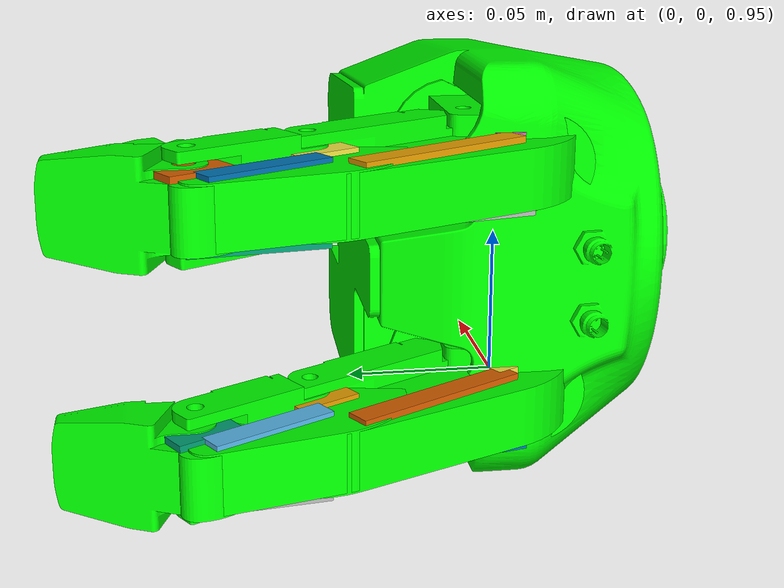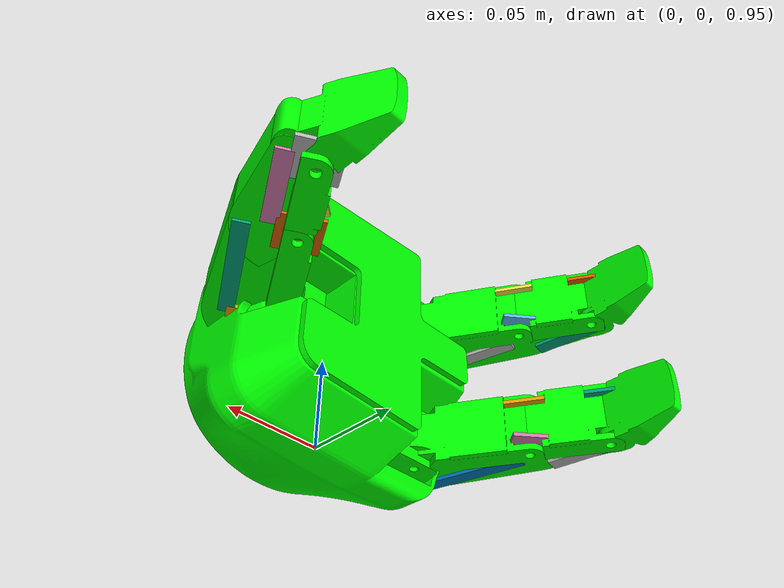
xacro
<?xml version="1.0"?>
<robot xmlns:xacro="http://ros.org/wiki/xacro"
       name="robotiq_hand" >

  <xacro:arg name="namespace_without_slash" default="left_hand"/>
  <xacro:arg name="prefix_without_underscore" default="left_hand"/>
  <xacro:arg name="prefix" default="$(arg prefix_without_underscore)_"/>

  <!-- https://answers.ros.org/question/216975/loading-variables-with-xacroinclude/ -->
  <xacro:include filename="$(find robotiq_s_model_visualization)/cfg/robotiq_hand.plugin.gazebo.xacro" />
  <xacro:robotiq_hand_plugin_gazebo namespace_without_slash="$(arg namespace_without_slash)" />

  <xacro:include filename="$(find robotiq_s_model_visualization)/cfg/robotiq_hand_macro.urdf.xacro" />

  <link name="world"/>

  <xacro:robotiq_hand prefix="$(arg prefix)" parent="world" reflect="-1">
    <origin rpy="0 0 0" xyz="0 0 1.0"/>
  </xacro:robotiq_hand>

</robot>

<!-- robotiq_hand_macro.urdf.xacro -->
<robot xmlns:xacro="http://ros.org/wiki/xacro" name="robotiq_hand">

  <xacro:macro name="robotiq_finger" params="prefix">
    <!-- Link list -->

    <!-- Link 0 -->
    <link name="${prefix}link_0">
      <visual>
        <origin xyz="0 0 0" rpy="0 0 0"/>
        <geometry>
          <mesh filename="package://robotiq_s_model_visualization/meshes/s-model_articulated/visual/link_0.STL" />
        </geometry>
        <material name="green">
          <color rgba="0 1 0 1"/>
        </material>
      </visual>
      <collision>
        <origin rpy="0 0 0" xyz="0 0 0"/>
        <geometry>
          <mesh filename="package://robotiq_s_model_visualization/meshes/s-model_articulated/collision/link_0.STL" />
        </geometry>
        <material name="yellow">
          <color rgba="0 1 1 1"/>
        </material>
      </collision>
      <inertial>
        <mass value="0.1"/>
        <origin xyz="-0.01 0 0"/>
        <inertia ixx="0.000018" ixy="0" ixz="0" iyy="0.000025" iyz="0" izz="0.000025"/>
      </inertial>
    </link>

    <gazebo reference="${prefix}link_0">
      <mu1>1.1</mu1>
      <mu2>1.1</mu2>
    </gazebo>

    <!-- Link 1 -->
    <link name="${prefix}link_1">
      <visual>
        <origin rpy="0 0 ${3.1416/2}" xyz="0 0.05717 0"/>
        <geometry>
          <mesh filename="package://robotiq_s_model_visualization/meshes/s-model_articulated/visual/link_1.STL" />
        </geometry>
        <material name="green"/>
      </visual>
      <collision>
        <origin rpy="0 0 ${3.1416/2}" xyz="0 0.05717 0"/>
        <geometry>
          <mesh filename="package://robotiq_s_model_visualization/meshes/s-model_articulated/collision/link_1.STL"/>
        </geometry>
        <material name="yellow">
          <color rgba="0 1 1 1"/>
        </material>
      </collision>
      <inertial>
        <origin rpy="0 0 ${3.1416/2}" xyz="0.00053 0.03218 0"/>
        <mass value="0.047"/>
        <inertia ixx= "0.00000499332"
                 ixy= "0.00000091312"
                 ixz="-0.00000000120"
                 iyy= "0.00006434531"
                 iyz="-0.00000000007"
                 izz= "0.00006061917"/>
      </inertial>
    </link>

    <gazebo reference="${prefix}link_1">
      <mu1>1.1</mu1>
      <mu2>1.1</mu2>
    </gazebo>

    <!-- Link 2 -->
    <link name="${prefix}link_2">
      <visual>
        <origin rpy="0 0 ${3.1416/2}" xyz="0 0.03810 0.0075"/>
        <geometry>
          <mesh filename="package://robotiq_s_model_visualization/meshes/s-model_articulated/visual/link_2.STL" />
        </geometry>
        <material name="green"/>
      </visual>
      <collision>
        <origin rpy="0 0 ${3.1416/2}" xyz="0 0.03810 0.0075"/>
          <geometry>
            <mesh filename="package://robotiq_s_model_visualization/meshes/s-model_articulated/collision/link_2.STL"/>
          </geometry>
        <material name="yellow"/>
      </collision>
      <inertial>
        <origin rpy="0 0 ${3.1416/2}" xyz="0.00048 0.02167 0.00018"/>
        <mass value="0.03284"/>
        <inertia ixx="0.00000348008"
                 ixy="0.00000031940"
                 ixz="0.00000013041"
                 iyy="0.00002248123"
                 iyz="0.00000000291"
                 izz="0.00001986346"/>
      </inertial>
    </link>

    <gazebo reference="${prefix}link_2">
      <mu1>1.1</mu1>
      <mu2>1.1</mu2>
    </gazebo>

    <!-- Link 3 -->
    <link name="${prefix}link_3">
      <visual>
        <origin xyz="0 0 0" rpy="0 0 0"/>
        <geometry>
          <mesh filename="package://robotiq_s_model_visualization/meshes/s-model_articulated/visual/link_3.STL" />
        </geometry>
        <material name="green"/>
      </visual>
      <collision>
        <origin xyz="0 0 0" rpy="0 0 0"/>
        <geometry>
          <mesh filename="package://robotiq_s_model_visualization/meshes/s-model_articulated/collision/link_3.STL"/>
        </geometry>
        <material name="yellow"/>
      </collision>
      <inertial>
        <origin rpy="0 0 0" xyz="0.01626 0.00049 0.0002"/>
        <mass value="0.03354"/>
        <inertia ixx="0.00000305151"
                 ixy="0.00000089792"
                 ixz="0.00000000249"
                 iyy="0.00001427978"
                 iyz="-0.00000001191"
                 izz="0.00001264126"/>
      </inertial>
    </link>

    <gazebo reference="${prefix}link_3">
      <mu1>1.1</mu1>
      <mu2>1.1</mu2>
    </gazebo>

    <!-- Link proximal actuating hinge -->
    <link name="${prefix}link_proximal_actuating_hinge">
      <visual>
        <origin rpy="0 0 0" xyz="0.01429 0 0"/>
        <geometry>
          <box size="0.02858 .0075 .002"/>
        </geometry>
      </visual>
      <collision>
        <origin rpy="0 0 0" xyz="0.01429 0 0"/>
         <geometry>
          <box size="0.02858 .0075 .002"/>
        </geometry>
      </collision>
      <inertial>
        <origin rpy="0 0 0" xyz="0.0012 -0.00162 -0.00161"/>
        <mass value="0.02647"/>
        <inertia ixx= "0.00000156447"
                 ixy= "0.000000236226"
                 ixz="-0.00000014862"
                 iyy= "0.00000221068"
                 iyz="-0.00000014369"
                 izz= "0.00000323175"/>
      </inertial>
    </link>

    <gazebo reference="${prefix}link_proximal_actuating_hinge">
      <mu1>1.1</mu1>
      <mu2>1.1</mu2>
    </gazebo>

    <!-- Link paraproximal actuating hinge -->
    <link name="${prefix}link_paraproximal_actuating_hinge">
      <visual>
        <origin rpy="0 0 0" xyz="0.01143 0 0"/>
        <geometry>
          <box size="0.02286 .0075 .002"/>
        </geometry>
      </visual>
      <collision>
        <origin rpy="0 0 0" xyz="0.01143 0 0"/>
         <geometry>
          <box size="0.02286 .0075 .002"/>
        </geometry>
      </collision>
      <inertial>
        <origin rpy="0 0 0" xyz="0.0064 0 0"/>
        <!-- copied from proximal_actuating_hinge -->
        <mass value="0.00362"/>
        <inertia ixx= "0.00000012043"
                 ixy= "0"
                 ixz= "0"
                 iyy= "0.00000053588"
                 iyz= "0"
                 izz= "0.00000065322"/>
      </inertial>
    </link>

    <gazebo reference="${prefix}link_paraproximal_actuating_hinge">
      <mu1>1.1</mu1>
      <mu2>1.1</mu2>
    </gazebo>

    <!-- Link proximal actuating bar -->
    <link name="${prefix}link_proximal_actuating_bar">
      <visual>
        <origin rpy="0 0 0" xyz="0.026789 0 0"/>
        <geometry>
          <box size="0.05398 .0075 .002"/>
        </geometry>
      </visual>
      <collision>
        <origin rpy="0 0 0" xyz="0.026789 0 0"/>
         <geometry>
          <box size="0.05398 .0075 .002"/>
        </geometry>
      </collision>
      <inertial>
        <origin rpy="0 0 0" xyz="0.02699 -0.00122 0"/>
        <mass value="0.00659"/>
        <inertia ixx= "0.00000008348"
                 ixy="-0.0000002179"
                 ixz= "0.00000000134"
                 iyy= "0.00000719076"
                 iyz= "0"
                 izz= "0.00000718272"/>
      </inertial>
    </link>

    <gazebo reference="${prefix}link_proximal_actuating_bar">
      <mu1>1.1</mu1>
      <mu2>1.1</mu2>
    </gazebo>

    <!-- Link paraproximal bar -->
    <link name="${prefix}link_paraproximal_bar">
      <visual>
        <origin rpy="0 0 0" xyz="0.02885 0 0"/>
        <geometry>
          <box size="0.05770 .0075 .002"/>
        </geometry>
      </visual>
      <collision>
        <origin rpy="0 0 0" xyz="0.02885 0 0"/>
         <geometry>
          <box size="0.05770 .0075 .002"/>
        </geometry>
      </collision>
      <inertial>
        <origin rpy="0 0 0" xyz="0.02858 -0.00129 0"/>
        <mass value="0.00732"/>
        <inertia ixx= "0.00000009065"
                 ixy="-0.00000027047"
                 ixz= "0.00000000142"
                 iyy= "0.00000878034"
                 iyz= "0"
                 izz= "0.00000877558"/>
      </inertial>
    </link>

    <gazebo reference="${prefix}link_paraproximal_bar">
      <mu1>1.1</mu1>
      <mu2>1.1</mu2>
    </gazebo>

    <!-- Link median actuating hinge -->
    <link name="${prefix}link_median_actuating_hinge">
      <visual>
        <origin rpy="0 0 0" xyz="0 0 0"/>
        <geometry>
          <box size=".02 .02 .002"/>
        </geometry>
      </visual>
      <collision>
        <origin rpy="0 0 0" xyz="0 0 0"/>
         <geometry>
          <box size=".02 .02 .002"/>
        </geometry>
      </collision>
      <inertial>
        <origin rpy="0 0 0" xyz="0.0092 0.00514 0"/>
        <mass value="0.00359"/>
        <inertia ixx= "0.00000024735"
                 ixy= "0.00000023619"
                 ixz= "0"
                 iyy= "0.00000047681"
                 iyz= "0"
                 izz= "0.00000071813"/>
      </inertial>
    </link>

    <gazebo reference="${prefix}link_median_actuating_hinge">
      <mu1>1.1</mu1>
      <mu2>1.1</mu2>
    </gazebo>

    <!-- Link median bar -->
    <link name="${prefix}link_median_bar">
      <visual>
        <origin rpy="0 0 0" xyz="0.01905 0 0"/>
        <geometry>
          <box size="0.0381 .0075 .002"/>
        </geometry>
      </visual>
      <collision>
        <origin rpy="0 0 0" xyz="0.01905 0 0"/>
         <geometry>
          <box size="0.0381 .0075 .002"/>
        </geometry>
      </collision>
      <inertial>
        <origin rpy="0 0 0" xyz="0.01905 -0.00107 0"/>
        <mass value="0.00538"/>
        <inertia ixx= "0.00000006639"
                 ixy="-0.00000010996"
                 ixz= "0.00000000094"
                 iyy= "0.00000305318"
                 iyz= "0"
                 izz= "0.00000304657"/>
      </inertial>
    </link>

    <gazebo reference="${prefix}link_median_bar">
      <mu1>1.1</mu1>
      <mu2>1.1</mu2>
    </gazebo>

    <!-- Link paramedian hinge -->
    <link name="${prefix}link_paramedian_hinge">
      <visual>
        <origin rpy="0 0 0" xyz="0 0 0"/>
        <geometry>
          <box size=".02 .02 .002"/>
        </geometry>
      </visual>
      <collision>
        <origin rpy="0 0 0" xyz="0 0 0"/>
         <geometry>
          <box size=".02 .02 .002"/>
        </geometry>
      </collision>
      <inertial>
        <origin rpy="0 0 0" xyz="-0.01025 0.00046 0"/>
        <mass value="0.00276"/>
        <inertia ixx= "0.00000004213"
                 ixy="-0.00000001491"
                 ixz= "0"
                 iyy= "0.00000050258"
                 iyz= "0"
                 izz= "0.00000054007"/>
      </inertial>
    </link>

    <gazebo reference="${prefix}link_paramedian_hinge">
      <mu1>1.1</mu1>
      <mu2>1.1</mu2>
    </gazebo>

    <!-- Link median bar underactuated -->
    <link name="${prefix}link_median_bar_underactuated">
      <visual>
        <origin rpy="0 0 0" xyz="0.01905 0 0"/>
        <geometry>
          <box size="0.0381 .0075 .002"/>
        </geometry>
      </visual>
      <collision>
        <origin rpy="0 0 0" xyz="0.01905 0 0"/>
         <geometry>
          <box size="0.0381 .0075 .002"/>
        </geometry>
      </collision>
      <inertial>
        <origin rpy="0 0 0" xyz="0.01905 -0.00107 0"/>
        <mass value="0.00538"/>
        <inertia ixx= "0.00000006639"
                 ixy="-0.00000010996"
                 ixz="-0.00000000094"
                 iyy= "0.00000305318"
                 iyz= "0"
                 izz= "0.00000304657"/>
      </inertial>
    </link>

    <gazebo reference="${prefix}link_median_bar_underactuated">
      <mu1>1.1</mu1>
      <mu2>1.1</mu2>
    </gazebo>

    <!-- Link paradistal hinge -->
    <link name="${prefix}link_paradistal_hinge">
      <visual>
        <origin rpy="0 0 0" xyz="0 0 0"/>
        <geometry>
          <box size=".02 .02 .002"/>
        </geometry>
      </visual>
      <collision>
        <origin rpy="0 0 0" xyz="0 0 0"/>
         <geometry>
          <box size=".02 0.02 .002"/>
        </geometry>
      </collision>
      <inertial>
        <origin rpy="0 0 0" xyz="0.00548 0 0"/>
        <mass value="0.00158"/>
        <inertia ixx= "0.00000001907"
                 ixy= "0"
                 ixz= "0"
                 iyy= "0.00000010970"
                 iyz= "0"
                 izz= "0.00000012610"/>
      </inertial>
    </link>

    <gazebo reference="${prefix}link_paradistal_hinge">
      <mu1>1.1</mu1>
      <mu2>1.1</mu2>
    </gazebo>
    <!-- End of link list -->

    <!-- Joint list -->

    <!-- Joint proximal actuating hinge -->
    <joint name="${prefix}joint_proximal_actuating_hinge" type="revolute">
      <parent link="${prefix}link_0"/>
      <child link="${prefix}link_proximal_actuating_hinge"/>
      <axis xyz="0 0 1"/>
      <origin rpy="0 0 -2.0906" xyz="0 0 0.01"/>
      <limit effort="100" lower="-3.1416" upper="3.1416" velocity="100"/>
    </joint>

    <gazebo reference="${prefix}joint_proximal_actuating_hinge">
      <implicitSpringDamper>1</implicitSpringDamper>
    </gazebo>

    <!-- Joint paraproximal actuating hinge -->
    <joint name="${prefix}joint_paraproximal_actuating_hinge" type="revolute">
      <parent link="${prefix}link_0"/>
      <child link="${prefix}link_paraproximal_actuating_hinge"/>
      <axis xyz="0 0 1"/>
      <origin rpy="0 0 -2.0906" xyz="0 0 -0.01"/>
      <limit effort="100" lower="-3.1416" upper="3.1416" velocity="100"/>
    </joint>

    <gazebo reference="${prefix}joint_paraproximal_actuating_hinge">
      <implicitSpringDamper>1</implicitSpringDamper>
    </gazebo>

    <!-- Joint proximal actuating bar -->
    <joint name="${prefix}joint_proximal_actuating_bar" type="revolute">
      <parent link="${prefix}link_proximal_actuating_hinge"/>
      <child link="${prefix}link_proximal_actuating_bar"/>
      <axis xyz="0 0 1"/>
      <origin rpy="0 0 1.8616" xyz="0.02858 0 0"/>
      <limit effort="100" lower="-3.1416" upper="3.1416" velocity="100"/>
    </joint>

    <gazebo reference="${prefix}joint_proximal_actuating_bar">
      <implicitSpringDamper>1</implicitSpringDamper>
    </gazebo>

    <!-- Joint paraproximal bar -->
    <joint name="${prefix}joint_paraproximal_bar" type="revolute">
      <parent link="${prefix}link_paraproximal_actuating_hinge"/>
      <child link="${prefix}link_paraproximal_bar"/>
      <axis xyz="0 0 1"/>
      <origin rpy="0 0 1.57" xyz="0.02286 0 0"/>
      <limit effort="100" lower="-3.1416" upper="3.1416" velocity="100"/>
    </joint>

    <gazebo reference="${prefix}joint_paraproximal_bar">
      <implicitSpringDamper>1</implicitSpringDamper>
    </gazebo>

    <!-- Joint median actuating hinge -->
    <joint name="${prefix}joint_median_actuating_hinge" type="revolute">
      <parent link="${prefix}link_1"/>
      <child link="${prefix}link_median_actuating_hinge"/>
      <axis xyz="0 0 1"/>
      <origin rpy="0 0 ${-0.37}" xyz="0 0.05715 0.01"/>
      <limit effort="100" lower="-3.1416" upper="3.1416" velocity="100"/>
    </joint>

    <gazebo reference="${prefix}joint_median_actuating_hinge">
      <implicitSpringDamper>1</implicitSpringDamper>
    </gazebo>

    <!-- Joint paramedian hinge -->
    <joint name="${prefix}joint_paramedian_hinge" type="revolute">
      <parent link="${prefix}link_1"/>
      <child link="${prefix}link_paramedian_hinge"/>
      <axis xyz="0 0 1"/>
      <!-- -0.37 is hand picked, 0.9719 is hand calculated from atan(0.02381/0.01625) -->
      <origin rpy="0 0 0" xyz="0 0.05715 -0.01"/>
      <limit effort="100" lower="-3.1416" upper="3.1416" velocity="100"/>
    </joint>

    <gazebo reference="${prefix}joint_paramedian_hinge">
      <implicitSpringDamper>1</implicitSpringDamper>
    </gazebo>

    <!-- Joint median actuating hinge median bar -->
    <joint name="${prefix}joint_median_actuating_hinge_median_bar" type="revolute">
      <parent link="${prefix}link_median_actuating_hinge"/>
      <child link="${prefix}link_median_bar"/>
      <axis xyz="0 0 1"/>
      <!-- hand calc 90 deg + atan(0.01516/0.01625) -->
      <origin rpy="0 0 ${3.1416/2 + 0.7507}" xyz="0.01625 0.01516 0"/>
      <limit effort="100" lower="-3.1416" upper="3.1416" velocity="100"/>
    </joint>

    <gazebo reference="${prefix}joint_median_actuating_hinge_median_bar">
      <implicitSpringDamper>1</implicitSpringDamper>
    </gazebo>

    <!-- Joint paradistal hinge -->
    <joint name="${prefix}joint_paradistal_hinge" type="revolute">
      <parent link="${prefix}link_2"/>
      <child link="${prefix}link_paradistal_hinge"/>
      <axis xyz="0 0 1"/>
      <origin rpy="0 0 0" xyz="0 0.039 -0.01"/>
      <limit effort="100" lower="-3.1416" upper="3.1416" velocity="100"/>
    </joint>

    <gazebo reference="${prefix}joint_paradistal_hinge">
      <implicitSpringDamper>1</implicitSpringDamper>
    </gazebo>

    <!-- Joint paramedian hinge median bar underactuated -->
    <joint name="${prefix}joint_paramedian_hinge_median_bar_underactuated" type="revolute">
      <parent link="${prefix}link_paramedian_hinge"/>
      <child link="${prefix}link_median_bar_underactuated"/>
      <axis xyz="0 0 1"/>
      <!-- hand calc 90 deg + atan(0.01227/0.00329) -->
      <origin rpy="0 0 ${3.1416/2}" xyz="0.01227 0.00329 0"/>
      <limit effort="100" lower="-3.1416" upper="3.1416" velocity="100"/>
    </joint>

    <gazebo reference="${prefix}joint_paramedian_hinge_median_bar_underactuated">
      <implicitSpringDamper>1</implicitSpringDamper>
    </gazebo>

    <!-- Joint 1 -->
    <joint name="${prefix}joint_1" type="revolute">
      <origin rpy="0 0 -2.0906" xyz="0 0 0"/>
      <axis xyz="0 0 1" />
      <parent link="${prefix}link_0"/>
      <child link="${prefix}link_1"/>
      <dynamics damping="1" friction="0" />
      <!-- Limits: [0deg.,70deg.] -->
      <limit effort="60" velocity="-1" lower="0" upper="1.2217" />
    </joint>

    <gazebo reference="${prefix}joint_1">
      <implicitSpringDamper>1</implicitSpringDamper>
    </gazebo>

    <!-- Joint 2 -->
    <joint name="${prefix}joint_2" type="revolute">
      <parent link="${prefix}link_1"/>
      <child link="${prefix}link_2"/>
      <dynamics damping="1" friction="0" />
      <axis xyz="0 0 1"/>
      <origin rpy="0 0 0" xyz="0 0.05715 0"/>
      <!-- Limits: [0deg.,90deg.] -->
      <limit lower="0" upper="1.5708" effort="60" velocity="-1"/>
    </joint>

    <gazebo reference="${prefix}joint_2">
      <implicitSpringDamper>1</implicitSpringDamper>
    </gazebo>

    <!-- Joint 3 -->
    <joint name="${prefix}joint_3" type="revolute">
      <parent link="${prefix}link_2"/>
      <child link="${prefix}link_3"/>
      <dynamics damping="1" friction="0" />
      <axis xyz="0 0 1"/>
      <origin rpy="0 0 ${3.1416/2 + 0.5198}" xyz="0 0.039 0"/>
      <!-- Limits: [-38deg.,60deg.] -->
      <limit lower="-0.6632" upper="1.0471" effort="60" velocity="-1"/>
    </joint>

    <gazebo reference="${prefix}joint_3">
      <implicitSpringDamper>1</implicitSpringDamper>
    </gazebo>
    <!-- end of joint list -->

    <!-- coupling joints in sdf -->
    <gazebo>
      <joint name="${prefix}link_proximal_actuating_bar_median_actuating_hinge_couple" type="revolute">
        <parent>${prefix}link_median_actuating_hinge</parent>
        <child>${prefix}link_proximal_actuating_bar</child>
        <pose>0.05398 0 0 0 0 0</pose>
        <axis>
          <dynamics>
            <damping>0</damping>
            <friction>0</friction>
          </dynamics>
          <xyz>0 0 1</xyz>
        </axis>
      </joint>
    </gazebo>
    <gazebo reference="${prefix}link_proximal_actuating_bar_median_actuating_hinge_couple">
      <implicitSpringDamper>1</implicitSpringDamper>
    </gazebo>

    <gazebo>
      <joint name="${prefix}link_median_bar_link_3_couple" type="revolute">
        <parent>${prefix}link_3</parent>
        <child>${prefix}link_median_bar</child>
        <pose>0.0381 0 0 0 0 0</pose>
        <axis>
          <dynamics>
            <damping>0</damping>
            <friction>0</friction>
          </dynamics>
          <xyz>0 0 1</xyz>
        </axis>
      </joint>
    </gazebo>
    <gazebo reference="${prefix}link_median_bar_link_3_couple">
      <implicitSpringDamper>1</implicitSpringDamper>
    </gazebo>

    <gazebo>
      <joint name="${prefix}link_paramedian_bar_paradistal_hinge_couple" type="revolute">
        <parent>${prefix}link_paradistal_hinge</parent>
        <child>${prefix}link_median_bar_underactuated</child>
        <pose>0.0381 0 0 0 0 0</pose>
        <axis>
          <dynamics>
            <damping>0</damping>
            <friction>0</friction>
          </dynamics>
          <xyz>0 0 1</xyz>
        </axis>
      </joint>
    </gazebo>
    <gazebo reference="${prefix}link_median_bar_link_3_couple">
      <implicitSpringDamper>1</implicitSpringDamper>
    </gazebo>

    <gazebo>
      <joint name="${prefix}link_paradistal_hinge_link_3_couple" type="revolute">
        <parent>${prefix}link_paradistal_hinge</parent>
        <child>${prefix}link_3</child>
        <pose>0.0381 0 0 0 0 0</pose>
        <axis>
          <dynamics>
            <damping>0</damping>
            <friction>0</friction>
          </dynamics>
          <xyz>0 0 1</xyz>
        </axis>
      </joint>
    </gazebo>
    <gazebo reference="${prefix}link_paradistal_hinge_link_3_couple">
      <implicitSpringDamper>1</implicitSpringDamper>
    </gazebo>

    <gazebo>
      <joint name="${prefix}link_paraproximal_bar_paramedian_hinge_couple" type="revolute">
        <parent>${prefix}link_paramedian_hinge</parent>
        <child>${prefix}link_paraproximal_bar</child>
        <pose>0.05770 0 0 0 0 0</pose>
        <axis>
          <dynamics>
            <damping>0</damping>
            <friction>0</friction>
          </dynamics>
          <xyz>0 0 1</xyz>
        </axis>
      </joint>
    </gazebo>
    <gazebo reference="${prefix}link_paraproximal_bar_paramedian_hinge_couple">
      <implicitSpringDamper>1</implicitSpringDamper>
    </gazebo>

  </xacro:macro>

  <xacro:macro name="robotiq_hand" params="prefix *origin reflect parent">

    <!-- joint attaching parent link to robotiq hand -->
    <joint name="${prefix}robotiq_hand_joint" type="fixed">
      <xacro:insert_block name="origin"/>
      <parent link="${parent}"/>
      <child link="${prefix}palm"/>
    </joint>

    <!-- Insert the fingers -->
    <xacro:robotiq_finger prefix="${prefix}finger_1_"/>
    <xacro:robotiq_finger prefix="${prefix}finger_2_"/>
    <xacro:robotiq_finger prefix="${prefix}finger_middle_"/>

      <!-- link list -->

      <!-- Link palm -->
      <link name="${prefix}palm">
        <visual>
          <geometry>
            <mesh filename="package://robotiq_s_model_visualization/meshes/s-model_articulated/visual/palm.STL" />
          </geometry>
          <material name="green">
            <color rgba="0 1 0 1"/>
          </material>
        </visual>
        <!-- Simple shape collision -->
        <collision>
          <origin rpy="0 0 0" xyz="0 0 0"/>
          <geometry>
            <box size="0.1 0.1 0.1"/>
          </geometry>
          <material name="yellow">
            <color rgba="0 1 1 1"/>
          </material>
        </collision>
        <inertial>
          <origin rpy="0 0 0" xyz="0 0 0"/>
          <mass value="1.3"/>
          <inertia ixx="0.0035" ixy="0" ixz="-0" iyy="0.0035" iyz="0" izz="0.0035"/>
        </inertial>
      </link>

      <gazebo reference="${prefix}palm">
        <mu1>1.1</mu1>
        <mu2>1.1</mu2>
      </gazebo>
    <!-- End of link list -->

    <!-- Joint list -->

    <!-- Joint palm_finger_1_joint -->
    <joint name="${prefix}palm_finger_1_joint" type="revolute">
      <parent link="${prefix}palm"/>
      <child link="${prefix}finger_1_link_0"/>
      <dynamics damping="1" friction="0" />
      <axis xyz="0 1 0"/>
      <origin rpy="0 3.1416 -1.57" xyz="-0.0455 0.0214 0.036"/>
      <!-- Limits: [-17deg.,17deg.] -->
      <limit lower="-0.2967" upper="0.2967" effort="60" velocity="-1"/>
    </joint>

    <gazebo reference="${prefix}palm_finger_1_joint">
      <implicitSpringDamper>1</implicitSpringDamper>
    </gazebo>

    <!-- Joint palm_finger_2_joint -->
    <joint name="${prefix}palm_finger_2_joint" type="revolute">
      <parent link="${prefix}palm"/>
      <child link="${prefix}finger_2_link_0"/>
      <dynamics damping="1" friction="0" />
      <axis xyz="0 1 0"/>
      <origin rpy="0 3.1416 -1.57" xyz="-0.0455 0.0214 -0.036"/>
      <!-- Limits: [-17deg.,17deg.] -->
      <limit lower="-0.2967" upper="0.2967" effort="60" velocity="-1"/>
    </joint>

    <gazebo reference="${prefix}palm_finger_2_joint">
      <implicitSpringDamper>1</implicitSpringDamper>
    </gazebo>

    <!-- Joint palm_finger_middle_joint -->
    <joint name="${prefix}palm_finger_middle_joint" type="revolute">
      <parent link="${prefix}palm"/>
      <child link="${prefix}finger_middle_link_0"/>
      <dynamics damping="1" friction="0" />
      <axis xyz="0 1 0"/>
      <origin rpy="0 0 1.57" xyz="0.0455 0.0214 0"/>
      <limit lower="0" upper="0" effort="60" velocity="-1"/>
    </joint>

    <gazebo reference="${prefix}palm_finger_middle_joint">
      <implicitSpringDamper>1</implicitSpringDamper>
    </gazebo>
    <!-- end of joint list -->

  </xacro:macro>

</robot>
